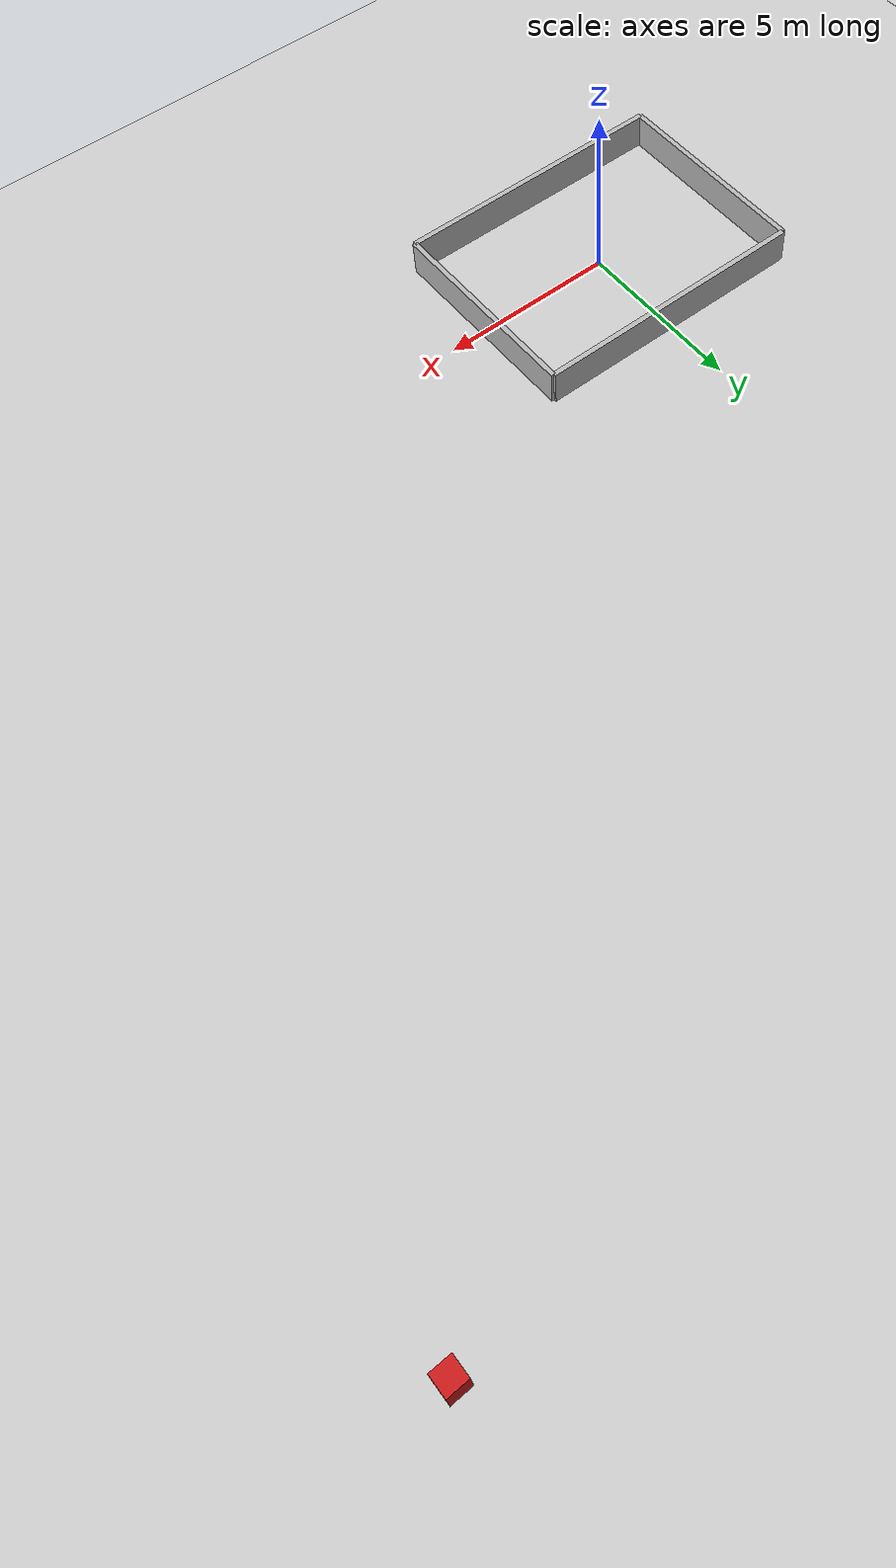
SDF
<?xml version="1.0" ?>
<sdf version="1.9"><world name="recovernav"><physics name="default" type="gz-physics-dartsim"><max_step_size>0.001</max_step_size><real_time_factor>1.0</real_time_factor></physics><plugin filename="gz-sim-physics-system" name="gz::sim::systems::Physics"/><plugin filename="gz-sim-user-commands-system" name="gz::sim::systems::UserCommands"/><plugin filename="gz-sim-scene-broadcaster-system" name="gz::sim::systems::SceneBroadcaster"/><include><uri>model://sun</uri></include><include><uri>model://ground_plane</uri></include>
<model name="wall_0"><static>true</static><pose>-4 0 0.5 0 0 0</pose><link name="link"><collision name="collision"><geometry><box><size>0.15 6 1</size></box></geometry></collision><visual name="visual"><geometry><box><size>0.15 6 1</size></box></geometry></visual></link></model>
<model name="wall_1"><static>true</static><pose>4 0 0.5 0 0 0</pose><link name="link"><collision name="collision"><geometry><box><size>0.15 6 1</size></box></geometry></collision><visual name="visual"><geometry><box><size>0.15 6 1</size></box></geometry></visual></link></model>
<model name="wall_2"><static>true</static><pose>0 -3 0.5 0 0 0</pose><link name="link"><collision name="collision"><geometry><box><size>8 0.15 1</size></box></geometry></collision><visual name="visual"><geometry><box><size>8 0.15 1</size></box></geometry></visual></link></model>
<model name="wall_3"><static>true</static><pose>0 3 0.5 0 0 0</pose><link name="link"><collision name="collision"><geometry><box><size>8 0.15 1</size></box></geometry></collision><visual name="visual"><geometry><box><size>8 0.15 1</size></box></geometry></visual></link></model>
<model name="dynamic_obstacle"><static>false</static><pose>20 20 0.5 0 0 0</pose><link name="link"><inertial><mass>20</mass><inertia><ixx>1</ixx><iyy>1</iyy><izz>1</izz></inertia></inertial><collision name="collision"><geometry><box><size>0.55 0.55 1</size></box></geometry></collision><visual name="visual"><geometry><box><size>0.55 0.55 1</size></box></geometry><material><ambient>0.8 0.1 0.1 1</ambient></material></visual></link></model>
</world></sdf>
